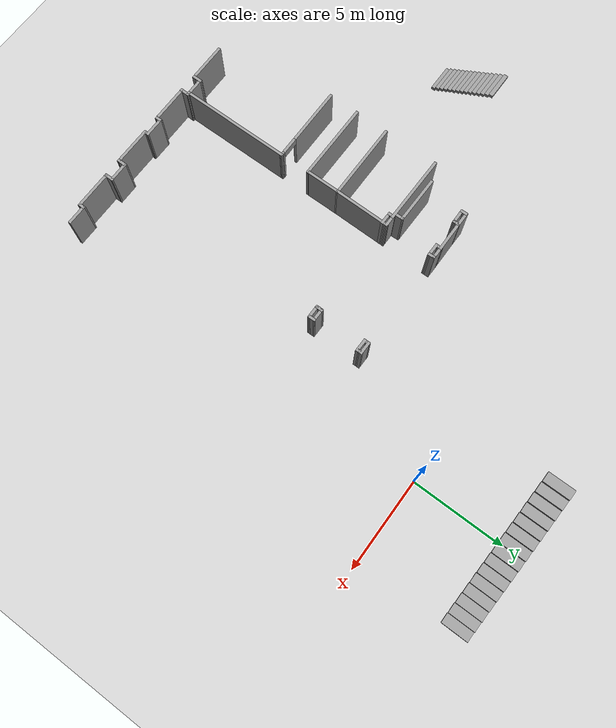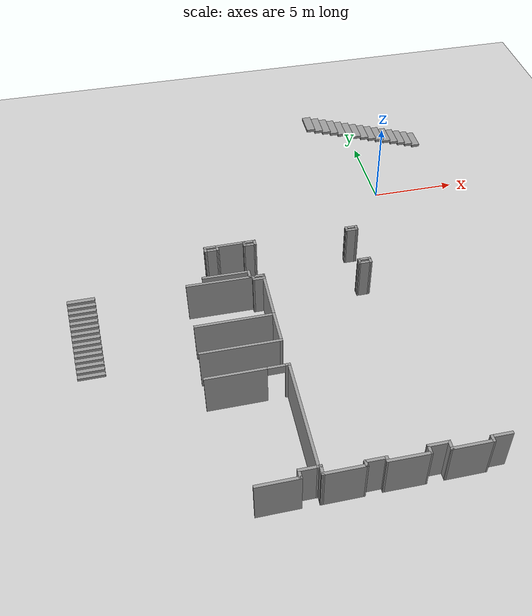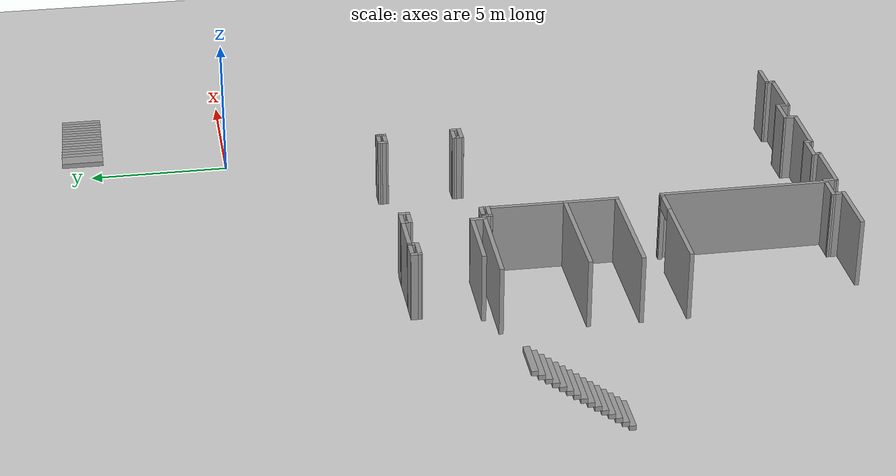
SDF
<sdf version="1.6">
 <world name="default">
  <model name="ground_plane">
   <static>1</static>
   <link name="link">
    <collision name="collision">
     <geometry><plane><normal>0 0 1</normal><size>100 100</size></plane></geometry>
     <surface>
      <contact><collide_bitmask>65535</collide_bitmask></contact>
      <friction><ode><mu>100</mu><mu2>50</mu2></ode></friction>
     </surface>
    </collision>
    <visual name="visual">
     <cast_shadows>0</cast_shadows>
     <geometry><plane><normal>0 0 1</normal><size>100 100</size></plane></geometry>
     <material>
      <script><uri>file://media/materials/scripts/gazebo.material</uri><name>Gazebo/Grey</name></script>
     </material>
    </visual>
   </link>
  </model>
  <model name="Myhal_5th_floor">
   <pose>-0.342666 0.4433 0 0 -0 0</pose>
   <link name="Stairs_0">
    <visual name="Stairs_0_Visual_0">
     <pose>4.54458 4.82327 0.083333 0 -0 -1.5708</pose>
     <geometry><box><size>1.43752 0.532234 0.166667</size></box></geometry>
     <material>
      <script><uri>file://media/materials/scripts/gazebo.material</uri><name>Gazebo/Grey</name></script>
      <ambient>1 1 1 1</ambient>
     </material>
     <meta><layer>0</layer></meta>
    </visual>
    <collision name="Stairs_0_Collision_0">
     <geometry><box><size>1.43752 0.532234 0.166667</size></box></geometry>
     <pose>4.54458 4.82327 0.083333 0 -0 -1.5708</pose>
    </collision>
    <visual name="Stairs_0_Visual_1">
     <pose>4.01234 4.82327 0.25 0 -0 -1.5708</pose>
     <geometry><box><size>1.43752 0.532234 0.166667</size></box></geometry>
     <material>
      <script><uri>file://media/materials/scripts/gazebo.material</uri><name>Gazebo/Grey</name></script>
      <ambient>1 1 1 1</ambient>
     </material>
     <meta><layer>0</layer></meta>
    </visual>
    <collision name="Stairs_0_Collision_1">
     <geometry><box><size>1.43752 0.532234 0.166667</size></box></geometry>
     <pose>4.01234 4.82327 0.25 0 -0 -1.5708</pose>
    </collision>
    <visual name="Stairs_0_Visual_2">
     <pose>3.48011 4.82327 0.416667 0 -0 -1.5708</pose>
     <geometry><box><size>1.43752 0.532234 0.166667</size></box></geometry>
     <material>
      <script><uri>file://media/materials/scripts/gazebo.material</uri><name>Gazebo/Grey</name></script>
      <ambient>1 1 1 1</ambient>
     </material>
     <meta><layer>0</layer></meta>
    </visual>
    <collision name="Stairs_0_Collision_2">
     <geometry><box><size>1.43752 0.532234 0.166667</size></box></geometry>
     <pose>3.48011 4.82327 0.416667 0 -0 -1.5708</pose>
    </collision>
    <visual name="Stairs_0_Visual_3">
     <pose>2.94787 4.82327 0.583333 0 -0 -1.5708</pose>
     <geometry><box><size>1.43752 0.532234 0.166667</size></box></geometry>
     <material>
      <script><uri>file://media/materials/scripts/gazebo.material</uri><name>Gazebo/Grey</name></script>
      <ambient>1 1 1 1</ambient>
     </material>
     <meta><layer>0</layer></meta>
    </visual>
    <collision name="Stairs_0_Collision_3">
     <geometry><box><size>1.43752 0.532234 0.166667</size></box></geometry>
     <pose>2.94787 4.82327 0.583333 0 -0 -1.5708</pose>
    </collision>
    <visual name="Stairs_0_Visual_4">
     <pose>2.41564 4.82327 0.75 0 -0 -1.5708</pose>
     <geometry><box><size>1.43752 0.532234 0.166667</size></box></geometry>
     <material>
      <script><uri>file://media/materials/scripts/gazebo.material</uri><name>Gazebo/Grey</name></script>
      <ambient>1 1 1 1</ambient>
     </material>
     <meta><layer>0</layer></meta>
    </visual>
    <collision name="Stairs_0_Collision_4">
     <geometry><box><size>1.43752 0.532234 0.166667</size></box></geometry>
     <pose>2.41564 4.82327 0.75 0 -0 -1.5708</pose>
    </collision>
    <visual name="Stairs_0_Visual_5">
     <pose>1.88341 4.82327 0.916667 0 -0 -1.5708</pose>
     <geometry><box><size>1.43752 0.532234 0.166667</size></box></geometry>
     <material>
      <script><uri>file://media/materials/scripts/gazebo.material</uri><name>Gazebo/Grey</name></script>
      <ambient>1 1 1 1</ambient>
     </material>
     <meta><layer>0</layer></meta>
    </visual>
    <collision name="Stairs_0_Collision_5">
     <geometry><box><size>1.43752 0.532234 0.166667</size></box></geometry>
     <pose>1.88341 4.82327 0.916667 0 -0 -1.5708</pose>
    </collision>
    <visual name="Stairs_0_Visual_6">
     <pose>1.35117 4.82327 1.08333 0 -0 -1.5708</pose>
     <geometry><box><size>1.43752 0.532234 0.166667</size></box></geometry>
     <material>
      <script><uri>file://media/materials/scripts/gazebo.material</uri><name>Gazebo/Grey</name></script>
      <ambient>1 1 1 1</ambient>
     </material>
     <meta><layer>0</layer></meta>
    </visual>
    <collision name="Stairs_0_Collision_6">
     <geometry><box><size>1.43752 0.532234 0.166667</size></box></geometry>
     <pose>1.35117 4.82327 1.08333 0 -0 -1.5708</pose>
    </collision>
    <visual name="Stairs_0_Visual_7">
     <pose>0.818936 4.82327 1.25 0 -0 -1.5708</pose>
     <geometry><box><size>1.43752 0.532234 0.166667</size></box></geometry>
     <material>
      <script><uri>file://media/materials/scripts/gazebo.material</uri><name>Gazebo/Grey</name></script>
      <ambient>1 1 1 1</ambient>
     </material>
     <meta><layer>0</layer></meta>
    </visual>
    <collision name="Stairs_0_Collision_7">
     <geometry><box><size>1.43752 0.532234 0.166667</size></box></geometry>
     <pose>0.818936 4.82327 1.25 0 -0 -1.5708</pose>
    </collision>
    <visual name="Stairs_0_Visual_8">
     <pose>0.286702 4.82327 1.41667 0 -0 -1.5708</pose>
     <geometry><box><size>1.43752 0.532234 0.166667</size></box></geometry>
     <material>
      <script><uri>file://media/materials/scripts/gazebo.material</uri><name>Gazebo/Grey</name></script>
      <ambient>1 1 1 1</ambient>
     </material>
     <meta><layer>0</layer></meta>
    </visual>
    <collision name="Stairs_0_Collision_8">
     <geometry><box><size>1.43752 0.532234 0.166667</size></box></geometry>
     <pose>0.286702 4.82327 1.41667 0 -0 -1.5708</pose>
    </collision>
    <visual name="Stairs_0_Visual_9">
     <pose>-0.245533 4.82327 1.58333 0 -0 -1.5708</pose>
     <geometry><box><size>1.43752 0.532234 0.166667</size></box></geometry>
     <material>
      <script><uri>file://media/materials/scripts/gazebo.material</uri><name>Gazebo/Grey</name></script>
      <ambient>1 1 1 1</ambient>
     </material>
     <meta><layer>0</layer></meta>
    </visual>
    <collision name="Stairs_0_Collision_9">
     <geometry><box><size>1.43752 0.532234 0.166667</size></box></geometry>
     <pose>-0.245533 4.82327 1.58333 0 -0 -1.5708</pose>
    </collision>
    <visual name="Stairs_0_Visual_10">
     <pose>-0.777767 4.82327 1.75 0 -0 -1.5708</pose>
     <geometry><box><size>1.43752 0.532234 0.166667</size></box></geometry>
     <material>
      <script><uri>file://media/materials/scripts/gazebo.material</uri><name>Gazebo/Grey</name></script>
      <ambient>1 1 1 1</ambient>
     </material>
     <meta><layer>0</layer></meta>
    </visual>
    <collision name="Stairs_0_Collision_10">
     <geometry><box><size>1.43752 0.532234 0.166667</size></box></geometry>
     <pose>-0.777767 4.82327 1.75 0 -0 -1.5708</pose>
    </collision>
    <visual name="Stairs_0_Visual_11">
     <pose>-1.31 4.82327 1.91667 0 -0 -1.5708</pose>
     <geometry><box><size>1.43752 0.532234 0.166667</size></box></geometry>
     <material>
      <script><uri>file://media/materials/scripts/gazebo.material</uri><name>Gazebo/Grey</name></script>
      <ambient>1 1 1 1</ambient>
     </material>
     <meta><layer>0</layer></meta>
    </visual>
    <collision name="Stairs_0_Collision_11">
     <geometry><box><size>1.43752 0.532234 0.166667</size></box></geometry>
     <pose>-1.31 4.82327 1.91667 0 -0 -1.5708</pose>
    </collision>
    <visual name="Stairs_0_Visual_12">
     <pose>-1.84224 4.82327 2.08333 0 -0 -1.5708</pose>
     <geometry><box><size>1.43752 0.532234 0.166667</size></box></geometry>
     <material>
      <script><uri>file://media/materials/scripts/gazebo.material</uri><name>Gazebo/Grey</name></script>
      <ambient>1 1 1 1</ambient>
     </material>
     <meta><layer>0</layer></meta>
    </visual>
    <collision name="Stairs_0_Collision_12">
     <geometry><box><size>1.43752 0.532234 0.166667</size></box></geometry>
     <pose>-1.84224 4.82327 2.08333 0 -0 -1.5708</pose>
    </collision>
    <visual name="Stairs_0_Visual_13">
     <pose>-2.37447 4.82327 2.25 0 -0 -1.5708</pose>
     <geometry><box><size>1.43752 0.532234 0.166667</size></box></geometry>
     <material>
      <script><uri>file://media/materials/scripts/gazebo.material</uri><name>Gazebo/Grey</name></script>
      <ambient>1 1 1 1</ambient>
     </material>
     <meta><layer>0</layer></meta>
    </visual>
    <collision name="Stairs_0_Collision_13">
     <geometry><box><size>1.43752 0.532234 0.166667</size></box></geometry>
     <pose>-2.37447 4.82327 2.25 0 -0 -1.5708</pose>
    </collision>
    <visual name="Stairs_0_Visual_14">
     <pose>-2.90671 4.82327 2.41667 0 -0 -1.5708</pose>
     <geometry><box><size>1.43752 0.532234 0.166667</size></box></geometry>
     <material>
      <script><uri>file://media/materials/scripts/gazebo.material</uri><name>Gazebo/Grey</name></script>
      <ambient>1 1 1 1</ambient>
     </material>
     <meta><layer>0</layer></meta>
    </visual>
    <collision name="Stairs_0_Collision_14">
     <geometry><box><size>1.43752 0.532234 0.166667</size></box></geometry>
     <pose>-2.90671 4.82327 2.41667 0 -0 -1.5708</pose>
    </collision>
   </link>
   <link name="Stairs_1">
    <visual name="Stairs_1_Visual_0">
     <pose>-18.3151 -11.5504 0.083333 0 -0 -3.14159</pose>
     <geometry><box><size>1.44258 0.225089 0.166667</size></box></geometry>
     <material>
      <script><uri>file://media/materials/scripts/gazebo.material</uri><name>Gazebo/Grey</name></script>
      <ambient>1 1 1 1</ambient>
     </material>
     <meta><layer>0</layer></meta>
    </visual>
    <collision name="Stairs_1_Collision_0">
     <geometry><box><size>1.44258 0.225089 0.166667</size></box></geometry>
     <pose>-18.3151 -11.5504 0.083333 0 -0 -3.14159</pose>
    </collision>
    <visual name="Stairs_1_Visual_1">
     <pose>-18.3151 -11.3253 0.25 0 -0 -3.14159</pose>
     <geometry><box><size>1.44258 0.225089 0.166667</size></box></geometry>
     <material>
      <script><uri>file://media/materials/scripts/gazebo.material</uri><name>Gazebo/Grey</name></script>
      <ambient>1 1 1 1</ambient>
     </material>
     <meta><layer>0</layer></meta>
    </visual>
    <collision name="Stairs_1_Collision_1">
     <geometry><box><size>1.44258 0.225089 0.166667</size></box></geometry>
     <pose>-18.3151 -11.3253 0.25 0 -0 -3.14159</pose>
    </collision>
    <visual name="Stairs_1_Visual_2">
     <pose>-18.3151 -11.1002 0.416667 0 -0 -3.14159</pose>
     <geometry><box><size>1.44258 0.225089 0.166667</size></box></geometry>
     <material>
      <script><uri>file://media/materials/scripts/gazebo.material</uri><name>Gazebo/Grey</name></script>
      <ambient>1 1 1 1</ambient>
     </material>
     <meta><layer>0</layer></meta>
    </visual>
    <collision name="Stairs_1_Collision_2">
     <geometry><box><size>1.44258 0.225089 0.166667</size></box></geometry>
     <pose>-18.3151 -11.1002 0.416667 0 -0 -3.14159</pose>
    </collision>
    <visual name="Stairs_1_Visual_3">
     <pose>-18.3151 -10.8751 0.583333 0 -0 -3.14159</pose>
     <geometry><box><size>1.44258 0.225089 0.166667</size></box></geometry>
     <material>
      <script><uri>file://media/materials/scripts/gazebo.material</uri><name>Gazebo/Grey</name></script>
      <ambient>1 1 1 1</ambient>
     </material>
     <meta><layer>0</layer></meta>
    </visual>
    <collision name="Stairs_1_Collision_3">
     <geometry><box><size>1.44258 0.225089 0.166667</size></box></geometry>
     <pose>-18.3151 -10.8751 0.583333 0 -0 -3.14159</pose>
    </collision>
    <visual name="Stairs_1_Visual_4">
     <pose>-18.3151 -10.65 0.75 0 -0 -3.14159</pose>
     <geometry><box><size>1.44258 0.225089 0.166667</size></box></geometry>
     <material>
      <script><uri>file://media/materials/scripts/gazebo.material</uri><name>Gazebo/Grey</name></script>
      <ambient>1 1 1 1</ambient>
     </material>
     <meta><layer>0</layer></meta>
    </visual>
    <collision name="Stairs_1_Collision_4">
     <geometry><box><size>1.44258 0.225089 0.166667</size></box></geometry>
     <pose>-18.3151 -10.65 0.75 0 -0 -3.14159</pose>
    </collision>
    <visual name="Stairs_1_Visual_5">
     <pose>-18.3151 -10.425 0.916667 0 -0 -3.14159</pose>
     <geometry><box><size>1.44258 0.225089 0.166667</size></box></geometry>
     <material>
      <script><uri>file://media/materials/scripts/gazebo.material</uri><name>Gazebo/Grey</name></script>
      <ambient>1 1 1 1</ambient>
     </material>
     <meta><layer>0</layer></meta>
    </visual>
    <collision name="Stairs_1_Collision_5">
     <geometry><box><size>1.44258 0.225089 0.166667</size></box></geometry>
     <pose>-18.3151 -10.425 0.916667 0 -0 -3.14159</pose>
    </collision>
    <visual name="Stairs_1_Visual_6">
     <pose>-18.3151 -10.1999 1.08333 0 -0 -3.14159</pose>
     <geometry><box><size>1.44258 0.225089 0.166667</size></box></geometry>
     <material>
      <script><uri>file://media/materials/scripts/gazebo.material</uri><name>Gazebo/Grey</name></script>
      <ambient>1 1 1 1</ambient>
     </material>
     <meta><layer>0</layer></meta>
    </visual>
    <collision name="Stairs_1_Collision_6">
     <geometry><box><size>1.44258 0.225089 0.166667</size></box></geometry>
     <pose>-18.3151 -10.1999 1.08333 0 -0 -3.14159</pose>
    </collision>
    <visual name="Stairs_1_Visual_7">
     <pose>-18.3151 -9.97478 1.25 0 -0 -3.14159</pose>
     <geometry><box><size>1.44258 0.225089 0.166667</size></box></geometry>
     <material>
      <script><uri>file://media/materials/scripts/gazebo.material</uri><name>Gazebo/Grey</name></script>
      <ambient>1 1 1 1</ambient>
     </material>
     <meta><layer>0</layer></meta>
    </visual>
    <collision name="Stairs_1_Collision_7">
     <geometry><box><size>1.44258 0.225089 0.166667</size></box></geometry>
     <pose>-18.3151 -9.97478 1.25 0 -0 -3.14159</pose>
    </collision>
    <visual name="Stairs_1_Visual_8">
     <pose>-18.3151 -9.74969 1.41667 0 -0 -3.14159</pose>
     <geometry><box><size>1.44258 0.225089 0.166667</size></box></geometry>
     <material>
      <script><uri>file://media/materials/scripts/gazebo.material</uri><name>Gazebo/Grey</name></script>
      <ambient>1 1 1 1</ambient>
     </material>
     <meta><layer>0</layer></meta>
    </visual>
    <collision name="Stairs_1_Collision_8">
     <geometry><box><size>1.44258 0.225089 0.166667</size></box></geometry>
     <pose>-18.3151 -9.74969 1.41667 0 -0 -3.14159</pose>
    </collision>
    <visual name="Stairs_1_Visual_9">
     <pose>-18.3151 -9.5246 1.58333 0 -0 -3.14159</pose>
     <geometry><box><size>1.44258 0.225089 0.166667</size></box></geometry>
     <material>
      <script><uri>file://media/materials/scripts/gazebo.material</uri><name>Gazebo/Grey</name></script>
      <ambient>1 1 1 1</ambient>
     </material>
     <meta><layer>0</layer></meta>
    </visual>
    <collision name="Stairs_1_Collision_9">
     <geometry><box><size>1.44258 0.225089 0.166667</size></box></geometry>
     <pose>-18.3151 -9.5246 1.58333 0 -0 -3.14159</pose>
    </collision>
    <visual name="Stairs_1_Visual_10">
     <pose>-18.3151 -9.29951 1.75 0 -0 -3.14159</pose>
     <geometry><box><size>1.44258 0.225089 0.166667</size></box></geometry>
     <material>
      <script><uri>file://media/materials/scripts/gazebo.material</uri><name>Gazebo/Grey</name></script>
      <ambient>1 1 1 1</ambient>
     </material>
     <meta><layer>0</layer></meta>
    </visual>
    <collision name="Stairs_1_Collision_10">
     <geometry><box><size>1.44258 0.225089 0.166667</size></box></geometry>
     <pose>-18.3151 -9.29951 1.75 0 -0 -3.14159</pose>
    </collision>
    <visual name="Stairs_1_Visual_11">
     <pose>-18.3151 -9.07442 1.91667 0 -0 -3.14159</pose>
     <geometry><box><size>1.44258 0.225089 0.166667</size></box></geometry>
     <material>
      <script><uri>file://media/materials/scripts/gazebo.material</uri><name>Gazebo/Grey</name></script>
      <ambient>1 1 1 1</ambient>
     </material>
     <meta><layer>0</layer></meta>
    </visual>
    <collision name="Stairs_1_Collision_11">
     <geometry><box><size>1.44258 0.225089 0.166667</size></box></geometry>
     <pose>-18.3151 -9.07442 1.91667 0 -0 -3.14159</pose>
    </collision>
    <visual name="Stairs_1_Visual_12">
     <pose>-18.3151 -8.84933 2.08333 0 -0 -3.14159</pose>
     <geometry><box><size>1.44258 0.225089 0.166667</size></box></geometry>
     <material>
      <script><uri>file://media/materials/scripts/gazebo.material</uri><name>Gazebo/Grey</name></script>
      <ambient>1 1 1 1</ambient>
     </material>
     <meta><layer>0</layer></meta>
    </visual>
    <collision name="Stairs_1_Collision_12">
     <geometry><box><size>1.44258 0.225089 0.166667</size></box></geometry>
     <pose>-18.3151 -8.84933 2.08333 0 -0 -3.14159</pose>
    </collision>
    <visual name="Stairs_1_Visual_13">
     <pose>-18.3151 -8.62425 2.25 0 -0 -3.14159</pose>
     <geometry><box><size>1.44258 0.225089 0.166667</size></box></geometry>
     <material>
      <script><uri>file://media/materials/scripts/gazebo.material</uri><name>Gazebo/Grey</name></script>
      <ambient>1 1 1 1</ambient>
     </material>
     <meta><layer>0</layer></meta>
    </visual>
    <collision name="Stairs_1_Collision_13">
     <geometry><box><size>1.44258 0.225089 0.166667</size></box></geometry>
     <pose>-18.3151 -8.62425 2.25 0 -0 -3.14159</pose>
    </collision>
    <visual name="Stairs_1_Visual_14">
     <pose>-18.3151 -8.39916 2.41667 0 -0 -3.14159</pose>
     <geometry><box><size>1.44258 0.225089 0.166667</size></box></geometry>
     <material>
      <script><uri>file://media/materials/scripts/gazebo.material</uri><name>Gazebo/Grey</name></script>
      <ambient>1 1 1 1</ambient>
     </material>
     <meta><layer>0</layer></meta>
    </visual>
    <collision name="Stairs_1_Collision_14">
     <geometry><box><size>1.44258 0.225089 0.166667</size></box></geometry>
     <pose>-18.3151 -8.39916 2.41667 0 -0 -3.14159</pose>
    </collision>
   </link>
   <link name="Wall_339">
    <collision name="Wall_339_Collision">
     <geometry><box><size>1.1135 0.15 2.5</size></box></geometry>
     <pose>0 0 1.25 0 -0 0</pose>
    </collision>
    <visual name="Wall_339_Visual">
     <pose>0 0 1.25 0 -0 0</pose>
     <geometry><box><size>1.1135 0.15 2.5</size></box></geometry>
     <material>
      <script><uri>file://media/materials/scripts/gazebo.material</uri><name>Gazebo/Grey</name></script>
      <ambient>1 1 1 1</ambient>
     </material>
     <meta><layer>0</layer></meta>
    </visual>
    <pose>-0.122392 -20.9434 0 0 -0 3.13649</pose>
   </link>
   <link name="Wall_340">
    <collision name="Wall_340_Collision">
     <geometry><box><size>0.376126 0.15 2.5</size></box></geometry>
     <pose>0 0 1.25 0 -0 0</pose>
    </collision>
    <visual name="Wall_340_Visual">
     <pose>0 0 1.25 0 -0 0</pose>
     <geometry><box><size>0.376126 0.15 2.5</size></box></geometry>
     <material>
      <script><uri>file://media/materials/scripts/gazebo.material</uri><name>Gazebo/Grey</name></script>
      <ambient>1 1 1 1</ambient>
     </material>
     <meta><layer>0</layer></meta>
    </visual>
    <pose>-0.605367 -21.054 0 0 -0 -1.58167</pose>
   </link>
   <link name="Wall_341">
    <collision name="Wall_341_Collision">
     <geometry><box><size>2.12615 0.15 2.5</size></box></geometry>
     <pose>0 0 1.25 0 -0 0</pose>
    </collision>
    <visual name="Wall_341_Visual">
     <pose>0 0 1.25 0 -0 0</pose>
     <geometry><box><size>2.12615 0.15 2.5</size></box></geometry>
     <material>
      <script><uri>file://media/materials/scripts/gazebo.material</uri><name>Gazebo/Grey</name></script>
      <ambient>1 1 1 1</ambient>
     </material>
     <meta><layer>0</layer></meta>
    </visual>
    <pose>-1.59467 -21.1658 0 0 -0 3.14035</pose>
   </link>
   <link name="Wall_343">
    <collision name="Wall_343_Collision">
     <geometry><box><size>0.519057 0.15 2.5</size></box></geometry>
     <pose>0 0 1.25 0 -0 0</pose>
    </collision>
    <visual name="Wall_343_Visual">
     <pose>0 0 1.25 0 -0 0</pose>
     <geometry><box><size>0.519057 0.15 2.5</size></box></geometry>
     <material>
      <script><uri>file://media/materials/scripts/gazebo.material</uri><name>Gazebo/Grey</name></script>
      <ambient>1 1 1 1</ambient>
     </material>
     <meta><layer>0</layer></meta>
    </visual>
    <pose>-2.58441 -20.9801 0 0 -0 1.57986</pose>
   </link>
   <link name="Wall_344">
    <collision name="Wall_344_Collision">
     <geometry><box><size>1.12842 0.15 2.5</size></box></geometry>
     <pose>0 0 1.25 0 -0 0</pose>
    </collision>
    <visual name="Wall_344_Visual">
     <pose>0 0 1.25 0 -0 0</pose>
     <geometry><box><size>1.12842 0.15 2.5</size></box></geometry>
     <material>
      <script><uri>file://media/materials/scripts/gazebo.material</uri><name>Gazebo/Grey</name></script>
      <ambient>1 1 1 1</ambient>
     </material>
     <meta><layer>0</layer></meta>
    </visual>
    <pose>-3.07529 -20.7972 0 0 -0 -3.13827</pose>
   </link>
   <link name="Wall_345">
    <collision name="Wall_345_Collision">
     <geometry><box><size>0.523871 0.15 2.5</size></box></geometry>
     <pose>0 0 1.25 0 -0 0</pose>
    </collision>
    <visual name="Wall_345_Visual">
     <pose>0 0 1.25 0 -0 0</pose>
     <geometry><box><size>0.523871 0.15 2.5</size></box></geometry>
     <material>
      <script><uri>file://media/materials/scripts/gazebo.material</uri><name>Gazebo/Grey</name></script>
      <ambient>1 1 1 1</ambient>
     </material>
     <meta><layer>0</layer></meta>
    </visual>
    <pose>-3.56775 -20.9857 0 0 -0 -1.58819</pose>
   </link>
   <link name="Wall_346">
    <collision name="Wall_346_Collision">
     <geometry><box><size>2.14597 0.15 2.5</size></box></geometry>
     <pose>0 0 1.25 0 -0 0</pose>
    </collision>
    <visual name="Wall_346_Visual">
     <pose>0 0 1.25 0 -0 0</pose>
     <geometry><box><size>2.14597 0.15 2.5</size></box></geometry>
     <material>
      <script><uri>file://media/materials/scripts/gazebo.material</uri><name>Gazebo/Grey</name></script>
      <ambient>1 1 1 1</ambient>
     </material>
     <meta><layer>0</layer></meta>
    </visual>
    <pose>-4.56893 -21.1661 0 0 -0 3.13508</pose>
   </link>
   <link name="Wall_347">
    <collision name="Wall_347_Collision">
     <geometry><box><size>0.335282 0.15 2.5</size></box></geometry>
     <pose>0 0 1.25 0 -0 0</pose>
    </collision>
    <visual name="Wall_347_Visual">
     <pose>0 0 1.25 0 -0 0</pose>
     <geometry><box><size>0.335282 0.15 2.5</size></box></geometry>
     <material>
      <script><uri>file://media/materials/scripts/gazebo.material</uri><name>Gazebo/Grey</name></script>
      <ambient>1 1 1 1</ambient>
     </material>
     <meta><layer>0</layer></meta>
    </visual>
    <pose>-5.56685 -21.067 0 0 -0 1.5708</pose>
   </link>
   <link name="Wall_348">
    <collision name="Wall_348_Collision">
     <geometry><box><size>1.11217 0.15 2.5</size></box></geometry>
     <pose>0 0 1.25 0 -0 0</pose>
    </collision>
    <visual name="Wall_348_Visual">
     <pose>0 0 1.25 0 -0 0</pose>
     <geometry><box><size>1.11217 0.15 2.5</size></box></geometry>
     <material>
      <script><uri>file://media/materials/scripts/gazebo.material</uri><name>Gazebo/Grey</name></script>
      <ambient>1 1 1 1</ambient>
     </material>
     <meta><layer>0</layer></meta>
    </visual>
    <pose>-6.04793 -20.9727 0 0 -0 3.13821</pose>
   </link>
   <link name="Wall_349">
    <collision name="Wall_349_Collision">
     <geometry><box><size>0.354811 0.15 2.5</size></box></geometry>
     <pose>0 0 1.25 0 -0 0</pose>
    </collision>
    <visual name="Wall_349_Visual">
     <pose>0 0 1.25 0 -0 0</pose>
     <geometry><box><size>0.354811 0.15 2.5</size></box></geometry>
     <material>
      <script><uri>file://media/materials/scripts/gazebo.material</uri><name>Gazebo/Grey</name></script>
      <ambient>1 1 1 1</ambient>
     </material>
     <meta><layer>0</layer></meta>
    </visual>
    <pose>-6.53064 -21.0735 0 0 -0 -1.58667</pose>
   </link>
   <link name="Wall_352">
    <collision name="Wall_352_Collision">
     <geometry><box><size>2.13284 0.15 2.5</size></box></geometry>
     <pose>0 0 1.25 0 -0 0</pose>
    </collision>
    <visual name="Wall_352_Visual">
     <pose>0 0 1.25 0 -0 0</pose>
     <geometry><box><size>2.13284 0.15 2.5</size></box></geometry>
     <material>
      <script><uri>file://media/materials/scripts/gazebo.material</uri><name>Gazebo/Grey</name></script>
      <ambient>1 1 1 1</ambient>
     </material>
     <meta><layer>0</layer></meta>
    </visual>
    <pose>-7.52368 -21.1759 0 0 -0 3.14159</pose>
   </link>
   <link name="Wall_353">
    <collision name="Wall_353_Collision">
     <geometry><box><size>0.543331 0.15 2.5</size></box></geometry>
     <pose>0 0 1.25 0 -0 0</pose>
    </collision>
    <visual name="Wall_353_Visual">
     <pose>0 0 1.25 0 -0 0</pose>
     <geometry><box><size>0.543331 0.15 2.5</size></box></geometry>
     <material>
      <script><uri>file://media/materials/scripts/gazebo.material</uri><name>Gazebo/Grey</name></script>
      <ambient>1 1 1 1</ambient>
     </material>
     <meta><layer>0</layer></meta>
    </visual>
    <pose>-8.51185 -20.9792 0 0 -0 1.55427</pose>
   </link>
   <link name="Wall_354">
    <collision name="Wall_354_Collision">
     <geometry><box><size>0.254018 0.15 2.5</size></box></geometry>
     <pose>0 0 1.25 0 -0 0</pose>
    </collision>
    <visual name="Wall_354_Visual">
     <pose>0 0 1.25 0 -0 0</pose>
     <geometry><box><size>0.254018 0.15 2.5</size></box></geometry>
     <material>
      <script><uri>file://media/materials/scripts/gazebo.material</uri><name>Gazebo/Grey</name></script>
      <ambient>1 1 1 1</ambient>
     </material>
     <meta><layer>0</layer></meta>
    </visual>
    <pose>-8.56061 -20.7782 0 0 -0 3.05866</pose>
   </link>
   <link name="Wall_357">
    <collision name="Wall_357_Collision">
     <geometry><box><size>6.02848 0.15 2.5</size></box></geometry>
     <pose>0 0 1.25 0 -0 0</pose>
    </collision>
    <visual name="Wall_357_Visual">
     <pose>0 0 1.25 0 -0 0</pose>
     <geometry><box><size>6.02848 0.15 2.5</size></box></geometry>
     <material>
      <script><uri>file://media/materials/scripts/gazebo.material</uri><name>Gazebo/Grey</name></script>
      <ambient>1 1 1 1</ambient>
     </material>
     <meta><layer>0</layer></meta>
    </visual>
    <pose>-8.61381 -17.839 0 0 -0 1.5712</pose>
   </link>
   <link name="Wall_360">
    <pose>-10.6819 -14.9032 0 0 -0 -3.13992</pose>
    <visual name="Wall_360_Visual_0">
     <pose>-2.00835 0 1.25 0 -0 0</pose>
     <geometry><box><size>0.267098 0.15 2.5</size></box></geometry>
     <material>
      <script><uri>file://media/materials/scripts/gazebo.material</uri><name>Gazebo/Grey</name></script>
      <ambient>1 1 1 1</ambient>
     </material>
     <meta><layer>0</layer></meta>
    </visual>
    <collision name="Wall_360_Collision_0">
     <geometry><box><size>0.267098 0.15 2.5</size></box></geometry>
     <pose>-2.00835 0 1.25 0 -0 0</pose>
    </collision>
    <visual name="Wall_360_Visual_1">
     <pose>0.583549 0 1.25 0 -0 0</pose>
     <geometry><box><size>3.1167 0.15 2.5</size></box></geometry>
     <material>
      <script><uri>file://media/materials/scripts/gazebo.material</uri><name>Gazebo/Grey</name></script>
      <ambient>1 1 1 1</ambient>
     </material>
     <meta><layer>0</layer></meta>
    </visual>
    <collision name="Wall_360_Collision_1">
     <geometry><box><size>3.1167 0.15 2.5</size></box></geometry>
     <pose>0.583549 0 1.25 0 -0 0</pose>
    </collision>
    <visual name="Wall_360_Visual_2">
     <pose>-1.4248 0 2.25 0 -0 0</pose>
     <geometry><box><size>0.9 0.15 0.5</size></box></geometry>
     <material>
      <script><uri>file://media/materials/scripts/gazebo.material</uri><name>Gazebo/Grey</name></script>
      <ambient>1 1 1 1</ambient>
     </material>
     <meta><layer>0</layer></meta>
    </visual>
    <collision name="Wall_360_Collision_2">
     <geometry><box><size>0.9 0.15 0.5</size></box></geometry>
     <pose>-1.4248 0 2.25 0 -0 0</pose>
    </collision>
   </link>
   <link name="Wall_376">
    <collision name="Wall_376_Collision">
     <geometry><box><size>1.03557 0.15 2.5</size></box></geometry>
     <pose>0 0 1.25 0 -0 0</pose>
    </collision>
    <visual name="Wall_376_Visual">
     <pose>0 0 1.25 0 -0 0</pose>
     <geometry><box><size>1.03557 0.15 2.5</size></box></geometry>
     <material>
      <script><uri>file://media/materials/scripts/gazebo.material</uri><name>Gazebo/Grey</name></script>
      <ambient>1 1 1 1</ambient>
     </material>
     <meta><layer>0</layer></meta>
    </visual>
    <pose>-9.0554 -20.7766 0 0 -0 3.13792</pose>
   </link>
   <link name="Wall_377">
    <collision name="Wall_377_Collision">
     <geometry><box><size>0.523741 0.15 2.5</size></box></geometry>
     <pose>0 0 1.25 0 -0 0</pose>
    </collision>
    <visual name="Wall_377_Visual">
     <pose>0 0 1.25 0 -0 0</pose>
     <geometry><box><size>0.523741 0.15 2.5</size></box></geometry>
     <material>
      <script><uri>file://media/materials/scripts/gazebo.material</uri><name>Gazebo/Grey</name></script>
      <ambient>1 1 1 1</ambient>
     </material>
     <meta><layer>0</layer></meta>
    </visual>
    <pose>-9.4978 -20.9618 0 0 -0 -1.56873</pose>
   </link>
   <link name="Wall_378">
    <collision name="Wall_378_Collision">
     <geometry><box><size>2.17111 0.15 2.5</size></box></geometry>
     <pose>0 0 1.25 0 -0 0</pose>
    </collision>
    <visual name="Wall_378_Visual">
     <pose>0 0 1.25 0 -0 0</pose>
     <geometry><box><size>2.17111 0.15 2.5</size></box></geometry>
     <material>
      <script><uri>file://media/materials/scripts/gazebo.material</uri><name>Gazebo/Grey</name></script>
      <ambient>1 1 1 1</ambient>
     </material>
     <meta><layer>0</layer></meta>
    </visual>
    <pose>-10.5079 -21.1512 0 0 -0 -3.13912</pose>
   </link>
   <link name="Wall_400">
    <collision name="Wall_400_Collision">
     <geometry><box><size>4.24283 0.15 2.5</size></box></geometry>
     <pose>0 0 1.25 0 -0 0</pose>
    </collision>
    <visual name="Wall_400_Visual">
     <pose>0 0 1.25 0 -0 0</pose>
     <geometry><box><size>4.24283 0.15 2.5</size></box></geometry>
     <material>
      <script><uri>file://media/materials/scripts/gazebo.material</uri><name>Gazebo/Grey</name></script>
      <ambient>1 1 1 1</ambient>
     </material>
     <meta><layer>0</layer></meta>
    </visual>
    <pose>-10.7035 -13.2849 0 0 -0 -0.001597</pose>
   </link>
   <link name="Wall_401">
    <collision name="Wall_401_Collision">
     <geometry><box><size>1.96108 0.15 2.5</size></box></geometry>
     <pose>0 0 1.25 0 -0 0</pose>
    </collision>
    <visual name="Wall_401_Visual">
     <pose>0 0 1.25 0 -0 0</pose>
     <geometry><box><size>1.96108 0.15 2.5</size></box></geometry>
     <material>
      <script><uri>file://media/materials/scripts/gazebo.material</uri><name>Gazebo/Grey</name></script>
      <ambient>1 1 1 1</ambient>
     </material>
     <meta><layer>0</layer></meta>
    </visual>
    <pose>-8.65706 -12.3827 0 0 -0 1.5708</pose>
   </link>
   <link name="Wall_402">
    <collision name="Wall_402_Collision">
     <geometry><box><size>4.22974 0.15 2.5</size></box></geometry>
     <pose>0 0 1.25 0 -0 0</pose>
    </collision>
    <visual name="Wall_402_Visual">
     <pose>0 0 1.25 0 -0 0</pose>
     <geometry><box><size>4.22974 0.15 2.5</size></box></geometry>
     <material>
      <script><uri>file://media/materials/scripts/gazebo.material</uri><name>Gazebo/Grey</name></script>
      <ambient>1 1 1 1</ambient>
     </material>
     <meta><layer>0</layer></meta>
    </visual>
    <pose>-10.6969 -11.4804 0 0 -0 -3.13999</pose>
   </link>
   <link name="Wall_404">
    <collision name="Wall_404_Collision">
     <geometry><box><size>3.07654 0.15 2.5</size></box></geometry>
     <pose>0 0 1.25 0 -0 0</pose>
    </collision>
    <visual name="Wall_404_Visual">
     <pose>0 0 1.25 0 -0 0</pose>
     <geometry><box><size>3.07654 0.15 2.5</size></box></geometry>
     <material>
      <script><uri>file://media/materials/scripts/gazebo.material</uri><name>Gazebo/Grey</name></script>
      <ambient>1 1 1 1</ambient>
     </material>
     <meta><layer>0</layer></meta>
    </visual>
    <pose>-8.6429 -10.014 0 0 -0 1.56112</pose>
   </link>
   <link name="Wall_405">
    <collision name="Wall_405_Collision">
     <geometry><box><size>0.668833 0.15 2.5</size></box></geometry>
     <pose>0 0 1.25 0 -0 0</pose>
    </collision>
    <visual name="Wall_405_Visual">
     <pose>0 0 1.25 0 -0 0</pose>
     <geometry><box><size>0.668833 0.15 2.5</size></box></geometry>
     <material>
      <script><uri>file://media/materials/scripts/gazebo.material</uri><name>Gazebo/Grey</name></script>
      <ambient>1 1 1 1</ambient>
     </material>
     <meta><layer>0</layer></meta>
    </visual>
    <pose>-8.88815 -8.54946 0 0 -0 3.13664</pose>
   </link>
   <link name="Wall_406">
    <collision name="Wall_406_Collision">
     <geometry><box><size>3.75246 0.15 2.5</size></box></geometry>
     <pose>0 0 1.25 0 -0 0</pose>
    </collision>
    <visual name="Wall_406_Visual">
     <pose>0 0 1.25 0 -0 0</pose>
     <geometry><box><size>3.75246 0.15 2.5</size></box></geometry>
     <material>
      <script><uri>file://media/materials/scripts/gazebo.material</uri><name>Gazebo/Grey</name></script>
      <ambient>1 1 1 1</ambient>
     </material>
     <meta><layer>0</layer></meta>
    </visual>
    <pose>-10.9487 -8.53343 0 0 -0 3.13161</pose>
   </link>
   <link name="Wall_411">
    <collision name="Wall_411_Collision">
     <geometry><box><size>2.61498 0.15 2.5</size></box></geometry>
     <pose>0 0 1.25 0 -0 0</pose>
    </collision>
    <visual name="Wall_411_Visual">
     <pose>0 0 1.25 0 -0 0</pose>
     <geometry><box><size>2.61498 0.15 2.5</size></box></geometry>
     <material>
      <script><uri>file://media/materials/scripts/gazebo.material</uri><name>Gazebo/Grey</name></script>
      <ambient>1 1 1 1</ambient>
     </material>
     <meta><layer>0</layer></meta>
    </visual>
    <pose>-10.589 -8.10355 0 0 -0 -0.01061</pose>
   </link>
   <link name="Wall_412">
    <collision name="Wall_412_Collision">
     <geometry><box><size>0.535966 0.15 2.5</size></box></geometry>
     <pose>0 0 1.25 0 -0 0</pose>
    </collision>
    <visual name="Wall_412_Visual">
     <pose>0 0 1.25 0 -0 0</pose>
     <geometry><box><size>0.535966 0.15 2.5</size></box></geometry>
     <material>
      <script><uri>file://media/materials/scripts/gazebo.material</uri><name>Gazebo/Grey</name></script>
      <ambient>1 1 1 1</ambient>
     </material>
     <meta><layer>0</layer></meta>
    </visual>
    <pose>-9.35336 -8.3095 0 0 -0 -1.55385</pose>
   </link>
   <link name="Wall_416">
    <collision name="Wall_416_Collision">
     <geometry><box><size>0.705931 0.15 2.5</size></box></geometry>
     <pose>0 0 1.25 0 -0 0</pose>
    </collision>
    <visual name="Wall_416_Visual">
     <pose>0 0 1.25 0 -0 0</pose>
     <geometry><box><size>0.705931 0.15 2.5</size></box></geometry>
     <material>
      <script><uri>file://media/materials/scripts/gazebo.material</uri><name>Gazebo/Grey</name></script>
      <ambient>1 1 1 1</ambient>
     </material>
     <meta><layer>0</layer></meta>
    </visual>
    <pose>-8.90015 -8.77341 0 0 -0 3.12405</pose>
   </link>
   <link name="Wall_417">
    <collision name="Wall_417_Collision">
     <geometry><box><size>0.361686 0.15 2.5</size></box></geometry>
     <pose>0 0 1.25 0 -0 0</pose>
    </collision>
    <visual name="Wall_417_Visual">
     <pose>0 0 1.25 0 -0 0</pose>
     <geometry><box><size>0.361686 0.15 2.5</size></box></geometry>
     <material>
      <script><uri>file://media/materials/scripts/gazebo.material</uri><name>Gazebo/Grey</name></script>
      <ambient>1 1 1 1</ambient>
     </material>
     <meta><layer>0</layer></meta>
    </visual>
    <pose>-9.17808 -8.66289 0 0 -0 1.5708</pose>
   </link>
   <link name="Wall_420">
    <collision name="Wall_420_Collision">
     <geometry><box><size>0.74097 0.15 2.5</size></box></geometry>
     <pose>0 0 1.25 0 -0 0</pose>
    </collision>
    <visual name="Wall_420_Visual">
     <pose>0 0 1.25 0 -0 0</pose>
     <geometry><box><size>0.74097 0.15 2.5</size></box></geometry>
     <material>
      <script><uri>file://media/materials/scripts/gazebo.material</uri><name>Gazebo/Grey</name></script>
      <ambient>1 1 1 1</ambient>
     </material>
     <meta><layer>0</layer></meta>
    </visual>
    <pose>-2.95841 -8.76818 0 0 -0 0.000378</pose>
   </link>
   <link name="Wall_47">
    <collision name="Wall_47_Collision">
     <geometry><box><size>0.368669 0.15 2.5</size></box></geometry>
     <pose>0 0 1.25 0 -0 0</pose>
    </collision>
    <visual name="Wall_47_Visual">
     <pose>0 0 1.25 0 -0 0</pose>
     <geometry><box><size>0.368669 0.15 2.5</size></box></geometry>
     <material>
      <script><uri>file://media/materials/scripts/gazebo.material</uri><name>Gazebo/Grey</name></script>
      <ambient>1 1 1 1</ambient>
     </material>
     <meta><layer>0</layer></meta>
    </visual>
    <pose>-3.24525 -5.89747 0 0 -0 -1.57468</pose>
   </link>
   <link name="Wall_48">
    <collision name="Wall_48_Collision">
     <geometry><box><size>0.723431 0.15 2.5</size></box></geometry>
     <pose>0 0 1.25 0 -0 0</pose>
    </collision>
    <visual name="Wall_48_Visual">
     <pose>0 0 1.25 0 -0 0</pose>
     <geometry><box><size>0.723431 0.15 2.5</size></box></geometry>
     <material>
      <script><uri>file://media/materials/scripts/gazebo.material</uri><name>Gazebo/Grey</name></script>
      <ambient>1 1 1 1</ambient>
     </material>
     <meta><layer>0</layer></meta>
    </visual>
    <pose>-2.95897 -6.00944 0 0 -0 -0.009183</pose>
   </link>
   <link name="Wall_49">
    <collision name="Wall_49_Collision">
     <geometry><box><size>0.371301 0.15 2.5</size></box></geometry>
     <pose>0 0 1.25 0 -0 0</pose>
    </collision>
    <visual name="Wall_49_Visual">
     <pose>0 0 1.25 0 -0 0</pose>
     <geometry><box><size>0.371301 0.15 2.5</size></box></geometry>
     <material>
      <script><uri>file://media/materials/scripts/gazebo.material</uri><name>Gazebo/Grey</name></script>
      <ambient>1 1 1 1</ambient>
     </material>
     <meta><layer>0</layer></meta>
    </visual>
    <pose>-2.67517 -5.90175 0 0 -0 1.57925</pose>
   </link>
   <link name="Wall_57">
    <collision name="Wall_57_Collision">
     <geometry><box><size>0.394153 0.15 2.5</size></box></geometry>
     <pose>0 0 1.25 0 -0 0</pose>
    </collision>
    <visual name="Wall_57_Visual">
     <pose>0 0 1.25 0 -0 0</pose>
     <geometry><box><size>0.394153 0.15 2.5</size></box></geometry>
     <material>
      <script><uri>file://media/materials/scripts/gazebo.material</uri><name>Gazebo/Grey</name></script>
      <ambient>1 1 1 1</ambient>
     </material>
     <meta><layer>0</layer></meta>
    </visual>
    <pose>-11.3951 -5.89374 0 0 -0 -1.5607</pose>
   </link>
   <link name="Wall_58">
    <collision name="Wall_58_Collision">
     <geometry><box><size>0.825638 0.15 2.5</size></box></geometry>
     <pose>0 0 1.25 0 -0 0</pose>
    </collision>
    <visual name="Wall_58_Visual">
     <pose>0 0 1.25 0 -0 0</pose>
     <geometry><box><size>0.825638 0.15 2.5</size></box></geometry>
     <material>
      <script><uri>file://media/materials/scripts/gazebo.material</uri><name>Gazebo/Grey</name></script>
      <ambient>1 1 1 1</ambient>
     </material>
     <meta><layer>0</layer></meta>
    </visual>
    <pose>-11.0561 -6.01209 0 0 -0 0.010948</pose>
   </link>
   <link name="Wall_59">
    <collision name="Wall_59_Collision">
     <geometry><box><size>0.394857 0.15 2.5</size></box></geometry>
     <pose>0 0 1.25 0 -0 0</pose>
    </collision>
    <visual name="Wall_59_Visual">
     <pose>0 0 1.25 0 -0 0</pose>
     <geometry><box><size>0.394857 0.15 2.5</size></box></geometry>
     <material>
      <script><uri>file://media/materials/scripts/gazebo.material</uri><name>Gazebo/Grey</name></script>
      <ambient>1 1 1 1</ambient>
     </material>
     <meta><layer>0</layer></meta>
    </visual>
    <pose>-10.7208 -5.88599 0 0 -0 1.59094</pose>
   </link>
   <link name="Wall_60">
    <collision name="Wall_60_Collision">
     <geometry><box><size>0.817182 0.15 2.5</size></box></geometry>
     <pose>0 0 1.25 0 -0 0</pose>
    </collision>
    <visual name="Wall_60_Visual">
     <pose>0 0 1.25 0 -0 0</pose>
     <geometry><box><size>0.817182 0.15 2.5</size></box></geometry>
     <material>
      <script><uri>file://media/materials/scripts/gazebo.material</uri><name>Gazebo/Grey</name></script>
      <ambient>1 1 1 1</ambient>
     </material>
     <meta><layer>0</layer></meta>
    </visual>
    <pose>-11.0568 -5.76232 0 0 -0 3.13781</pose>
   </link>
   <link name="Wall_62">
    <collision name="Wall_62_Collision">
     <geometry><box><size>1.68614 0.15 2.5</size></box></geometry>
     <pose>0 0 1.25 0 -0 0</pose>
    </collision>
    <visual name="Wall_62_Visual">
     <pose>0 0 1.25 0 -0 0</pose>
     <geometry><box><size>1.68614 0.15 2.5</size></box></geometry>
     <material>
      <script><uri>file://media/materials/scripts/gazebo.material</uri><name>Gazebo/Grey</name></script>
      <ambient>1 1 1 1</ambient>
     </material>
     <meta><layer>0</layer></meta>
    </visual>
    <pose>-9.95517 -5.76218 0 0 -0 0.004815</pose>
   </link>
   <link name="Wall_63">
    <collision name="Wall_63_Collision">
     <geometry><box><size>0.404682 0.15 2.5</size></box></geometry>
     <pose>0 0 1.25 0 -0 0</pose>
    </collision>
    <visual name="Wall_63_Visual">
     <pose>0 0 1.25 0 -0 0</pose>
     <geometry><box><size>0.404682 0.15 2.5</size></box></geometry>
     <material>
      <script><uri>file://media/materials/scripts/gazebo.material</uri><name>Gazebo/Grey</name></script>
      <ambient>1 1 1 1</ambient>
     </material>
     <meta><layer>0</layer></meta>
    </visual>
    <pose>-9.18588 -5.88352 0 0 -0 -1.56112</pose>
   </link>
   <link name="Wall_64">
    <collision name="Wall_64_Collision">
     <geometry><box><size>0.734414 0.15 2.5</size></box></geometry>
     <pose>0 0 1.25 0 -0 0</pose>
    </collision>
    <visual name="Wall_64_Visual">
     <pose>0 0 1.25 0 -0 0</pose>
     <geometry><box><size>0.734414 0.15 2.5</size></box></geometry>
     <material>
      <script><uri>file://media/materials/scripts/gazebo.material</uri><name>Gazebo/Grey</name></script>
      <ambient>1 1 1 1</ambient>
     </material>
     <meta><layer>0</layer></meta>
    </visual>
    <pose>-8.89246 -6.01209 0 0 -0 -0.004219</pose>
   </link>
   <link name="Wall_65">
    <collision name="Wall_65_Collision">
     <geometry><box><size>0.389172 0.15 2.5</size></box></geometry>
     <pose>0 0 1.25 0 -0 0</pose>
    </collision>
    <visual name="Wall_65_Visual">
     <pose>0 0 1.25 0 -0 0</pose>
     <geometry><box><size>0.389172 0.15 2.5</size></box></geometry>
     <material>
      <script><uri>file://media/materials/scripts/gazebo.material</uri><name>Gazebo/Grey</name></script>
      <ambient>1 1 1 1</ambient>
     </material>
     <meta><layer>0</layer></meta>
    </visual>
    <pose>-8.60028 -5.89374 0 0 -0 1.5708</pose>
   </link>
   <link name="Wall_68">
    <collision name="Wall_68_Collision">
     <geometry><box><size>0.743801 0.15 2.5</size></box></geometry>
     <pose>0 0 1.25 0 -0 0</pose>
    </collision>
    <visual name="Wall_68_Visual">
     <pose>0 0 1.25 0 -0 0</pose>
     <geometry><box><size>0.743801 0.15 2.5</size></box></geometry>
     <material>
      <script><uri>file://media/materials/scripts/gazebo.material</uri><name>Gazebo/Grey</name></script>
      <ambient>1 1 1 1</ambient>
     </material>
     <meta><layer>0</layer></meta>
    </visual>
    <pose>-8.90542 -5.75836 0 0 -0 -0.005494</pose>
   </link>
   <link name="Wall_763">
    <collision name="Wall_763_Collision">
     <geometry><box><size>0.415827 0.15 2.5</size></box></geometry>
     <pose>0 0 1.25 0 -0 0</pose>
    </collision>
    <visual name="Wall_763_Visual">
     <pose>0 0 1.25 0 -0 0</pose>
     <geometry><box><size>0.415827 0.15 2.5</size></box></geometry>
     <material>
      <script><uri>file://media/materials/scripts/gazebo.material</uri><name>Gazebo/Grey</name></script>
      <ambient>1 1 1 1</ambient>
     </material>
     <meta><layer>0</layer></meta>
    </visual>
    <pose>-3.25547 -8.63539 0 0 -0 1.58275</pose>
   </link>
   <link name="Wall_764">
    <collision name="Wall_764_Collision">
     <geometry><box><size>0.743057 0.15 2.5</size></box></geometry>
     <pose>0 0 1.25 0 -0 0</pose>
    </collision>
    <visual name="Wall_764_Visual">
     <pose>0 0 1.25 0 -0 0</pose>
     <geometry><box><size>0.743057 0.15 2.5</size></box></geometry>
     <material>
      <script><uri>file://media/materials/scripts/gazebo.material</uri><name>Gazebo/Grey</name></script>
      <ambient>1 1 1 1</ambient>
     </material>
     <meta><layer>0</layer></meta>
    </visual>
    <pose>-2.96057 -8.50306 0 0 -0 -0.00193</pose>
   </link>
   <link name="Wall_765">
    <collision name="Wall_765_Collision">
     <geometry><box><size>0.414443 0.15 2.5</size></box></geometry>
     <pose>0 0 1.25 0 -0 0</pose>
    </collision>
    <visual name="Wall_765_Visual">
     <pose>0 0 1.25 0 -0 0</pose>
     <geometry><box><size>0.414443 0.15 2.5</size></box></geometry>
     <material>
      <script><uri>file://media/materials/scripts/gazebo.material</uri><name>Gazebo/Grey</name></script>
      <ambient>1 1 1 1</ambient>
     </material>
     <meta><layer>0</layer></meta>
    </visual>
    <pose>-2.6635 -8.63585 0 0 -0 -1.56647</pose>
   </link>
   <link name="Wall_767">
    <collision name="Wall_767_Collision">
     <geometry><box><size>0.720702 0.15 2.5</size></box></geometry>
     <pose>0 0 1.25 0 -0 0</pose>
    </collision>
    <visual name="Wall_767_Visual">
     <pose>0 0 1.25 0 -0 0</pose>
     <geometry><box><size>0.720702 0.15 2.5</size></box></geometry>
     <material>
      <script><uri>file://media/materials/scripts/gazebo.material</uri><name>Gazebo/Grey</name></script>
      <ambient>1 1 1 1</ambient>
     </material>
     <meta><layer>0</layer></meta>
    </visual>
    <pose>-2.95948 -5.78978 0 0 -0 -0.005767</pose>
   </link>
   <static>1</static>
  </model>
 </world>
</sdf>
